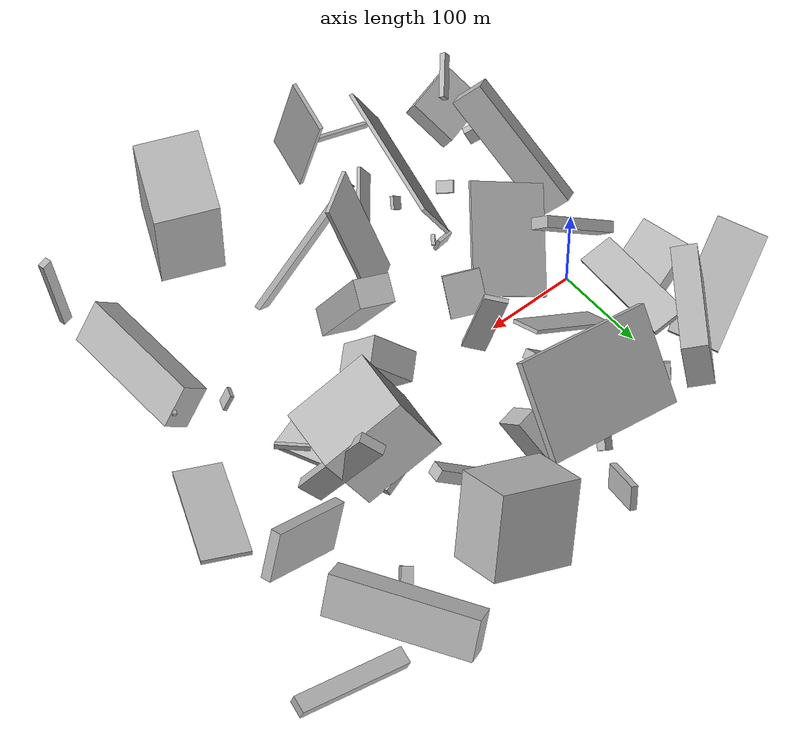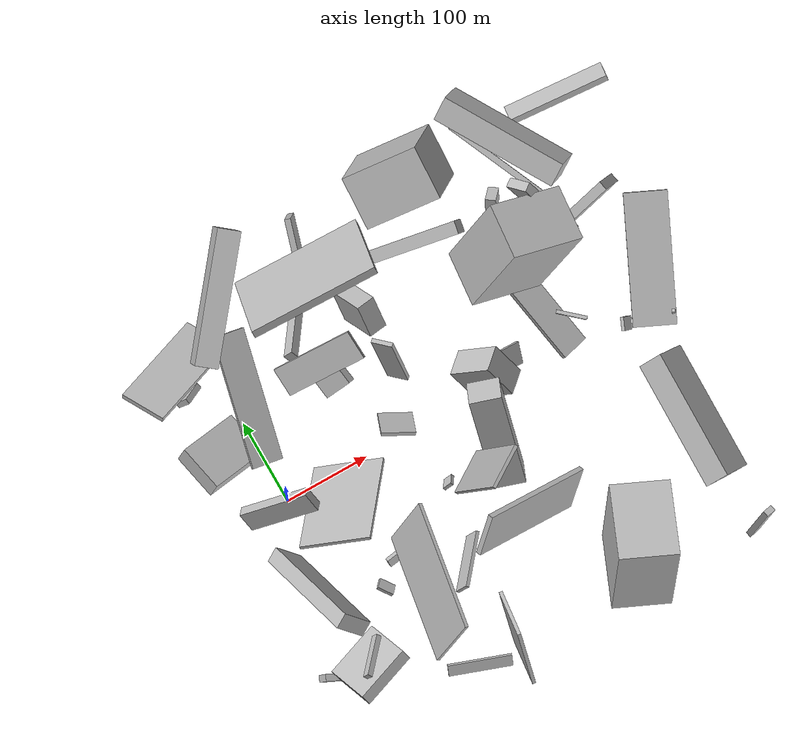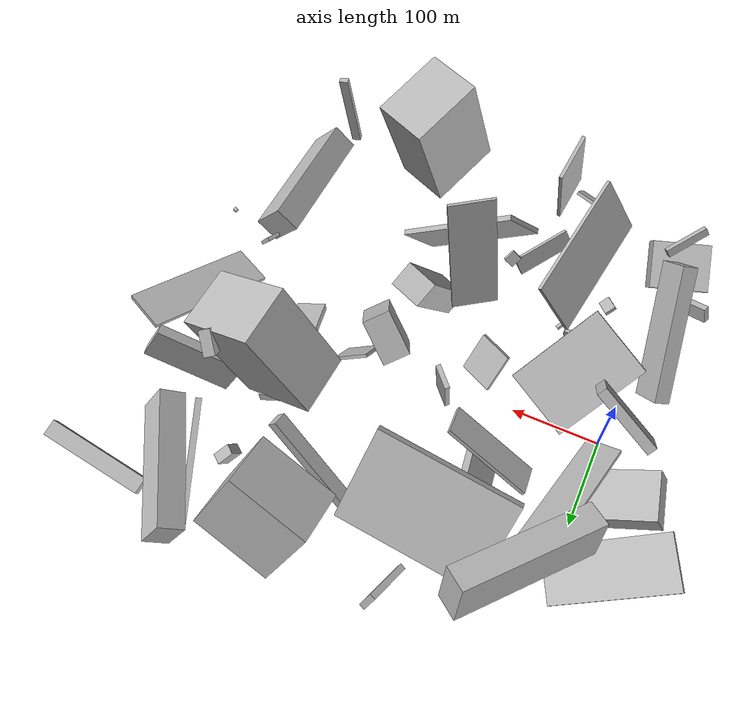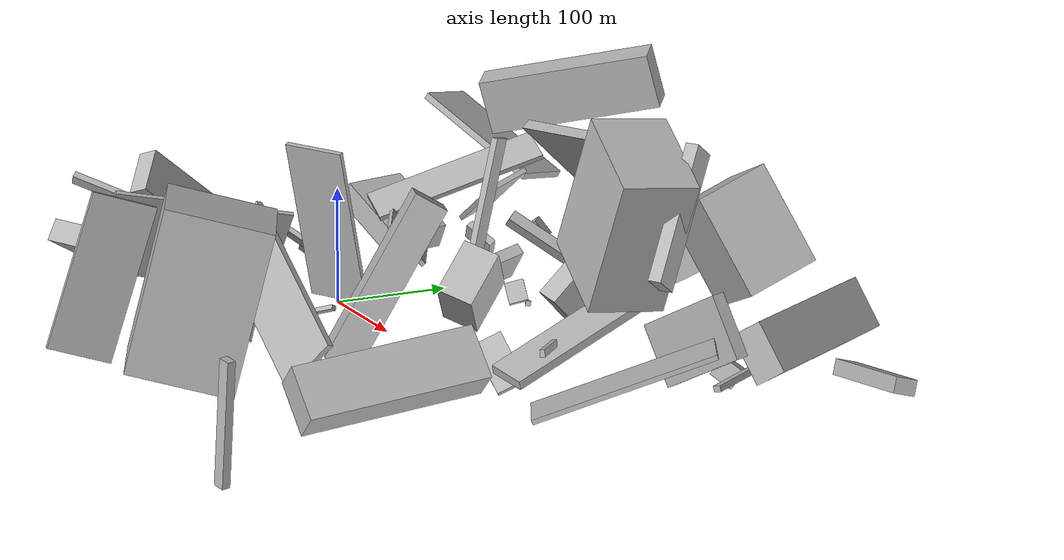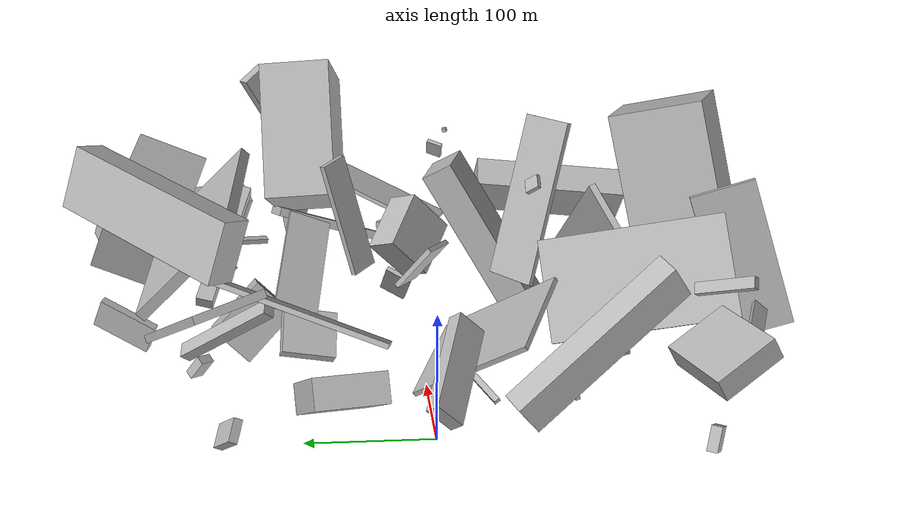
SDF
<sdf version="1.6">
 <world name="default">
  <scene>
   <sky><clouds><speed>12</speed></clouds></sky>
   <ambient>0.4 0.4 0.4 1</ambient>
   <background>0.7 0.7 0.7 1</background>
   <shadows>1</shadows>
  </scene>
  <gravity>0 0 -9.8066</gravity>
  <magnetic_field>6e-06 2.3e-05 -4.2e-05</magnetic_field>
  <physics default="0" name="default_physics" type="ode">
   <ode>
    <solver>
     <type>quick</type>
     <iters>10</iters>
     <sor>1.0</sor>
     <use_dynamic_moi_rescaling>0</use_dynamic_moi_rescaling>
    </solver>
    <constraints>
     <cfm>0</cfm>
     <erp>0.2</erp>
     <contact_max_correcting_vel>100</contact_max_correcting_vel>
     <contact_surface_layer>0.001</contact_surface_layer>
    </constraints>
   </ode>
   <max_step_size>0.004</max_step_size>
   <real_time_factor>1</real_time_factor>
   <real_time_update_rate>250</real_time_update_rate>
  </physics>
  <light name="sun" type="directional">
   <pose>0 0 10 0 0 0</pose>
   <diffuse>0.8 0.8 0.8 1</diffuse>
   <specular>0.2 0.2 0.2 1</specular>
   <attenuation>
    <range>1000</range>
    <constant>0.9</constant>
    <linear>0.01</linear>
    <quadratic>0.001</quadratic>
   </attenuation>
   <direction>-0.5 0.1 -0.9</direction>
  </light>
  <model name="building_1">
   <static>0</static>
   <pose>194.34569883834808 -94.3272535946426 128.6545128097053 1.8798057164773807 0.033140726628829845 0.5731515851457761</pose>
   <link name="link">
    <gravity>0</gravity>
    <pose>0 0 2.0 0 0 0</pose>
    <collision name="collision"><geometry><box><size>52 141 4</size></box></geometry></collision>
    <visual name="visual">
     <cast_shadows>0</cast_shadows>
     <geometry><box><size>52 141 4</size></box></geometry>
     <material>
      <script>
       <uri>model://HANNAS_wall/materials/scripts</uri>
       <uri>model://HANNAS_wall/materials/textures</uri>
       <name>vrc/HANNAS_wall</name>
      </script>
     </material>
    </visual>
   </link>
  </model>
  <model name="building_2">
   <static>0</static>
   <pose>64.1994674962472 -171.15647301067182 57.15995326398434 0.21515079012223287 -0.4532416574619626 2.871751072621569</pose>
   <link name="link">
    <gravity>0</gravity>
    <pose>0 0 42.0 0 0 0</pose>
    <collision name="collision"><geometry><box><size>4 150 84</size></box></geometry></collision>
    <visual name="visual">
     <cast_shadows>0</cast_shadows>
     <geometry><box><size>4 150 84</size></box></geometry>
     <material>
      <script>
       <uri>model://HANNAS_wall/materials/scripts</uri>
       <uri>model://HANNAS_wall/materials/textures</uri>
       <name>vrc/HANNAS_wall</name>
      </script>
     </material>
    </visual>
   </link>
  </model>
  <model name="building_3">
   <static>0</static>
   <pose>431.97326270727945 117.67972811752952 68.11363143289634 1.6911750621507078 -0.47173236183786715 0.16348133318099248</pose>
   <link name="link">
    <gravity>0</gravity>
    <pose>0 0 5.5 0 0 0</pose>
    <collision name="collision"><geometry><box><size>98 53 11</size></box></geometry></collision>
    <visual name="visual">
     <cast_shadows>0</cast_shadows>
     <geometry><box><size>98 53 11</size></box></geometry>
     <material>
      <script>
       <uri>model://HANNAS_wall/materials/scripts</uri>
       <uri>model://HANNAS_wall/materials/textures</uri>
       <name>vrc/HANNAS_wall</name>
      </script>
     </material>
    </visual>
   </link>
  </model>
  <model name="building_4">
   <static>0</static>
   <pose>106.33887461017079 160.3275684146659 54.91802894833538 -2.3797648201390573 0.5700018664867758 0.9738479457076715</pose>
   <link name="link">
    <gravity>0</gravity>
    <pose>0 0 6.0 0 0 0</pose>
    <collision name="collision"><geometry><box><size>102 10 12</size></box></geometry></collision>
    <visual name="visual">
     <cast_shadows>0</cast_shadows>
     <geometry><box><size>102 10 12</size></box></geometry>
     <material>
      <script>
       <uri>model://HANNAS_wall/materials/scripts</uri>
       <uri>model://HANNAS_wall/materials/textures</uri>
       <name>vrc/HANNAS_wall</name>
      </script>
     </material>
    </visual>
   </link>
  </model>
  <model name="building_5">
   <static>0</static>
   <pose>29.86513466439356 102.71705133317457 96.12974030426837 0.7591038394051389 -1.1027168636640485 -0.9246094998627664</pose>
   <link name="link">
    <gravity>0</gravity>
    <pose>0 0 18.5 0 0 0</pose>
    <collision name="collision"><geometry><box><size>4 150 37</size></box></geometry></collision>
    <visual name="visual">
     <cast_shadows>0</cast_shadows>
     <geometry><box><size>4 150 37</size></box></geometry>
     <material>
      <script>
       <uri>model://HANNAS_wall/materials/scripts</uri>
       <uri>model://HANNAS_wall/materials/textures</uri>
       <name>vrc/HANNAS_wall</name>
      </script>
     </material>
    </visual>
   </link>
  </model>
  <model name="building_6">
   <static>0</static>
   <pose>446.55809334009945 -36.367139742655866 31.298322075071482 0.0740865486901227 -1.2186775717350036 -2.0867194171382946</pose>
   <link name="link">
    <gravity>0</gravity>
    <pose>0 0 75.0 0 0 0</pose>
    <collision name="collision"><geometry><box><size>4 49 150</size></box></geometry></collision>
    <visual name="visual">
     <cast_shadows>0</cast_shadows>
     <geometry><box><size>4 49 150</size></box></geometry>
     <material>
      <script>
       <uri>model://HANNAS_wall/materials/scripts</uri>
       <uri>model://HANNAS_wall/materials/textures</uri>
       <name>vrc/HANNAS_wall</name>
      </script>
     </material>
    </visual>
   </link>
  </model>
  <model name="building_7">
   <static>0</static>
   <pose>276.8175680244014 208.5690999659703 86.8685478883111 1.1526596224438337 0.36506908083489714 2.9601582182610864</pose>
   <link name="link">
    <gravity>0</gravity>
    <pose>0 0 31.5 0 0 0</pose>
    <collision name="collision"><geometry><box><size>90 89 63</size></box></geometry></collision>
    <visual name="visual">
     <cast_shadows>0</cast_shadows>
     <geometry><box><size>90 89 63</size></box></geometry>
     <material>
      <script>
       <uri>model://HANNAS_wall/materials/scripts</uri>
       <uri>model://HANNAS_wall/materials/textures</uri>
       <name>vrc/HANNAS_wall</name>
      </script>
     </material>
    </visual>
   </link>
  </model>
  <model name="building_8">
   <static>0</static>
   <pose>139.83953668698356 -241.39430710045013 80.32408921557436 1.2511759170664396 -0.02047808448842035 -0.12989895570254026</pose>
   <link name="link">
    <gravity>0</gravity>
    <pose>0 0 27.5 0 0 0</pose>
    <collision name="collision"><geometry><box><size>4 132 55</size></box></geometry></collision>
    <visual name="visual">
     <cast_shadows>0</cast_shadows>
     <geometry><box><size>4 132 55</size></box></geometry>
     <material>
      <script>
       <uri>model://HANNAS_wall/materials/scripts</uri>
       <uri>model://HANNAS_wall/materials/textures</uri>
       <name>vrc/HANNAS_wall</name>
      </script>
     </material>
    </visual>
   </link>
  </model>
  <model name="building_9">
   <static>0</static>
   <pose>234.2562572595072 -49.59431417796519 77.79078242928526 1.0462870002364268 -0.11741194654023489 -0.3417019756081726</pose>
   <link name="link">
    <gravity>0</gravity>
    <pose>0 0 14.5 0 0 0</pose>
    <collision name="collision"><geometry><box><size>36 150 29</size></box></geometry></collision>
    <visual name="visual">
     <cast_shadows>0</cast_shadows>
     <geometry><box><size>36 150 29</size></box></geometry>
     <material>
      <script>
       <uri>model://HANNAS_wall/materials/scripts</uri>
       <uri>model://HANNAS_wall/materials/textures</uri>
       <name>vrc/HANNAS_wall</name>
      </script>
     </material>
    </visual>
   </link>
  </model>
  <model name="building_10">
   <static>0</static>
   <pose>173.02734470559773 157.93184386346732 46.557219266336894 2.903983987114152 -0.765549894817481 -1.2581992379983913</pose>
   <link name="link">
    <gravity>0</gravity>
    <pose>0 0 20.5 0 0 0</pose>
    <collision name="collision"><geometry><box><size>55 22 41</size></box></geometry></collision>
    <visual name="visual">
     <cast_shadows>0</cast_shadows>
     <geometry><box><size>55 22 41</size></box></geometry>
     <material>
      <script>
       <uri>model://HANNAS_wall/materials/scripts</uri>
       <uri>model://HANNAS_wall/materials/textures</uri>
       <name>vrc/HANNAS_wall</name>
      </script>
     </material>
    </visual>
   </link>
  </model>
  <model name="building_11">
   <static>0</static>
   <pose>366.25045360069385 184.3543669880596 21.49112685439611 2.996251662244055 0.5875487191818847 0.8395717041487313</pose>
   <link name="link">
    <gravity>0</gravity>
    <pose>0 0 9.0 0 0 0</pose>
    <collision name="collision"><geometry><box><size>21 12 18</size></box></geometry></collision>
    <visual name="visual">
     <cast_shadows>0</cast_shadows>
     <geometry><box><size>21 12 18</size></box></geometry>
     <material>
      <script>
       <uri>model://HANNAS_wall/materials/scripts</uri>
       <uri>model://HANNAS_wall/materials/textures</uri>
       <name>vrc/HANNAS_wall</name>
      </script>
     </material>
    </visual>
   </link>
  </model>
  <model name="building_12">
   <static>0</static>
   <pose>-28.180476413953965 158.92313505932813 21.383046073474635 0.7121616906973666 -0.8160995437555503 -0.33544976312815983</pose>
   <link name="link">
    <gravity>0</gravity>
    <pose>0 0 14.0 0 0 0</pose>
    <collision name="collision"><geometry><box><size>18 7 28</size></box></geometry></collision>
    <visual name="visual">
     <cast_shadows>0</cast_shadows>
     <geometry><box><size>18 7 28</size></box></geometry>
     <material>
      <script>
       <uri>model://HANNAS_wall/materials/scripts</uri>
       <uri>model://HANNAS_wall/materials/textures</uri>
       <name>vrc/HANNAS_wall</name>
      </script>
     </material>
    </visual>
   </link>
  </model>
  <model name="building_13">
   <static>0</static>
   <pose>317.60209823168793 96.19278712256317 91.8052791062629 -0.43123642136408846 -0.07946012174823576 -1.6787757816252264</pose>
   <link name="link">
    <gravity>0</gravity>
    <pose>0 0 62.5 0 0 0</pose>
    <collision name="collision"><geometry><box><size>64 88 125</size></box></geometry></collision>
    <visual name="visual">
     <cast_shadows>0</cast_shadows>
     <geometry><box><size>64 88 125</size></box></geometry>
     <material>
      <script>
       <uri>model://HANNAS_wall/materials/scripts</uri>
       <uri>model://HANNAS_wall/materials/textures</uri>
       <name>vrc/HANNAS_wall</name>
      </script>
     </material>
    </visual>
   </link>
  </model>
  <model name="building_14">
   <static>0</static>
   <pose>168.83010521107812 48.395004072273224 77.79462815658624 0.22068737953691986 -0.1360847505838712 -2.3881986770507813</pose>
   <link name="link">
    <gravity>0</gravity>
    <pose>0 0 49.5 0 0 0</pose>
    <collision name="collision"><geometry><box><size>5 24 99</size></box></geometry></collision>
    <visual name="visual">
     <cast_shadows>0</cast_shadows>
     <geometry><box><size>5 24 99</size></box></geometry>
     <material>
      <script>
       <uri>model://HANNAS_wall/materials/scripts</uri>
       <uri>model://HANNAS_wall/materials/textures</uri>
       <name>vrc/HANNAS_wall</name>
      </script>
     </material>
    </visual>
   </link>
  </model>
  <model name="building_15">
   <static>0</static>
   <pose>-35.97768782881814 45.42304617321125 58.65585751092235 -1.5566375866402506 0.4584782844903894 0.20858048504120183</pose>
   <link name="link">
    <gravity>0</gravity>
    <pose>0 0 27.0 0 0 0</pose>
    <collision name="collision"><geometry><box><size>74 23 54</size></box></geometry></collision>
    <visual name="visual">
     <cast_shadows>0</cast_shadows>
     <geometry><box><size>74 23 54</size></box></geometry>
     <material>
      <script>
       <uri>model://HANNAS_wall/materials/scripts</uri>
       <uri>model://HANNAS_wall/materials/textures</uri>
       <name>vrc/HANNAS_wall</name>
      </script>
     </material>
    </visual>
   </link>
  </model>
  <model name="building_16">
   <static>0</static>
   <pose>260.2827115573242 -11.242306352970036 61.60704238078348 0.7396720947365868 -0.30606900636417633 -2.4041930802911398</pose>
   <link name="link">
    <gravity>0</gravity>
    <pose>0 0 24.0 0 0 0</pose>
    <collision name="collision"><geometry><box><size>31 53 48</size></box></geometry></collision>
    <visual name="visual">
     <cast_shadows>0</cast_shadows>
     <geometry><box><size>31 53 48</size></box></geometry>
     <material>
      <script>
       <uri>model://HANNAS_wall/materials/scripts</uri>
       <uri>model://HANNAS_wall/materials/textures</uri>
       <name>vrc/HANNAS_wall</name>
      </script>
     </material>
    </visual>
   </link>
  </model>
  <model name="building_17">
   <static>0</static>
   <pose>426.0288261187634 251.45802075750325 24.761742600206468 -1.0070341890435295 1.2747350896105523 -1.137720026124609</pose>
   <link name="link">
    <gravity>0</gravity>
    <pose>0 0 59.0 0 0 0</pose>
    <collision name="collision"><geometry><box><size>13 18 118</size></box></geometry></collision>
    <visual name="visual">
     <cast_shadows>0</cast_shadows>
     <geometry><box><size>13 18 118</size></box></geometry>
     <material>
      <script>
       <uri>model://HANNAS_wall/materials/scripts</uri>
       <uri>model://HANNAS_wall/materials/textures</uri>
       <name>vrc/HANNAS_wall</name>
      </script>
     </material>
    </visual>
   </link>
  </model>
  <model name="building_18">
   <static>0</static>
   <pose>-14.075580883370776 -124.32435900433495 70.61478193683939 -0.7380574521843023 -0.3369555107241741 0.5052219483863529</pose>
   <link name="link">
    <gravity>0</gravity>
    <pose>0 0 19.0 0 0 0</pose>
    <collision name="collision"><geometry><box><size>18 150 38</size></box></geometry></collision>
    <visual name="visual">
     <cast_shadows>0</cast_shadows>
     <geometry><box><size>18 150 38</size></box></geometry>
     <material>
      <script>
       <uri>model://HANNAS_wall/materials/scripts</uri>
       <uri>model://HANNAS_wall/materials/textures</uri>
       <name>vrc/HANNAS_wall</name>
      </script>
     </material>
    </visual>
   </link>
  </model>
  <model name="building_19">
   <static>0</static>
   <pose>-13.702281990451624 148.93902465652536 156.51330321057958 0.7134513879689449 1.282778581904002 1.6129387332553349</pose>
   <link name="link">
    <gravity>0</gravity>
    <pose>0 0 75.0 0 0 0</pose>
    <collision name="collision"><geometry><box><size>48 26 150</size></box></geometry></collision>
    <visual name="visual">
     <cast_shadows>0</cast_shadows>
     <geometry><box><size>48 26 150</size></box></geometry>
     <material>
      <script>
       <uri>model://HANNAS_wall/materials/scripts</uri>
       <uri>model://HANNAS_wall/materials/textures</uri>
       <name>vrc/HANNAS_wall</name>
      </script>
     </material>
    </visual>
   </link>
  </model>
  <model name="building_20">
   <static>0</static>
   <pose>-8.738951806545868 -210.79781926318287 125.27576804772333 -2.7782018544278215 -0.519182130984666 2.2328034368541987</pose>
   <link name="link">
    <gravity>0</gravity>
    <pose>0 0 4.5 0 0 0</pose>
    <collision name="collision"><geometry><box><size>6 49 9</size></box></geometry></collision>
    <visual name="visual">
     <cast_shadows>0</cast_shadows>
     <geometry><box><size>6 49 9</size></box></geometry>
     <material>
      <script>
       <uri>model://HANNAS_wall/materials/scripts</uri>
       <uri>model://HANNAS_wall/materials/textures</uri>
       <name>vrc/HANNAS_wall</name>
      </script>
     </material>
    </visual>
   </link>
  </model>
  <model name="building_21">
   <static>0</static>
   <pose>371.2137238643017 17.53879739667163 56.5069105445302 1.6858824882822354 -0.0433855322228347 -0.7427722972742486</pose>
   <link name="link">
    <gravity>0</gravity>
    <pose>0 0 2.0 0 0 0</pose>
    <collision name="collision"><geometry><box><size>35 6 4</size></box></geometry></collision>
    <visual name="visual">
     <cast_shadows>0</cast_shadows>
     <geometry><box><size>35 6 4</size></box></geometry>
     <material>
      <script>
       <uri>model://HANNAS_wall/materials/scripts</uri>
       <uri>model://HANNAS_wall/materials/textures</uri>
       <name>vrc/HANNAS_wall</name>
      </script>
     </material>
    </visual>
   </link>
  </model>
  <model name="building_22">
   <static>0</static>
   <pose>263.4605571657455 170.74989167742257 66.07317043885162 0.25086183618375274 -0.6445326227027922 -0.329901217845889</pose>
   <link name="link">
    <gravity>0</gravity>
    <pose>0 0 6.5 0 0 0</pose>
    <collision name="collision"><geometry><box><size>125 15 13</size></box></geometry></collision>
    <visual name="visual">
     <cast_shadows>0</cast_shadows>
     <geometry><box><size>125 15 13</size></box></geometry>
     <material>
      <script>
       <uri>model://HANNAS_wall/materials/scripts</uri>
       <uri>model://HANNAS_wall/materials/textures</uri>
       <name>vrc/HANNAS_wall</name>
      </script>
     </material>
    </visual>
   </link>
  </model>
  <model name="building_23">
   <static>0</static>
   <pose>127.03211579607088 -165.14948964500468 63.74974430467694 -0.46909641202149177 -0.2776858641268088 -2.269112884743504</pose>
   <link name="link">
    <gravity>0</gravity>
    <pose>0 0 11.0 0 0 0</pose>
    <collision name="collision"><geometry><box><size>67 4 22</size></box></geometry></collision>
    <visual name="visual">
     <cast_shadows>0</cast_shadows>
     <geometry><box><size>67 4 22</size></box></geometry>
     <material>
      <script>
       <uri>model://HANNAS_wall/materials/scripts</uri>
       <uri>model://HANNAS_wall/materials/textures</uri>
       <name>vrc/HANNAS_wall</name>
      </script>
     </material>
    </visual>
   </link>
  </model>
  <model name="building_24">
   <static>0</static>
   <pose>415.35754072380325 -148.01300640847728 58.125529480105264 0.15216463442603126 0.8667632769756182 0.10279361821028138</pose>
   <link name="link">
    <gravity>0</gravity>
    <pose>0 0 15.5 0 0 0</pose>
    <collision name="collision"><geometry><box><size>45 150 31</size></box></geometry></collision>
    <visual name="visual">
     <cast_shadows>0</cast_shadows>
     <geometry><box><size>45 150 31</size></box></geometry>
     <material>
      <script>
       <uri>model://HANNAS_wall/materials/scripts</uri>
       <uri>model://HANNAS_wall/materials/textures</uri>
       <name>vrc/HANNAS_wall</name>
      </script>
     </material>
    </visual>
   </link>
  </model>
  <model name="building_25">
   <static>0</static>
   <pose>433.9195806794828 -288.5405099268822 53.83833735197348 -1.3754978277261989 -1.4312347431958765 -0.0034672019008437</pose>
   <link name="link">
    <gravity>0</gravity>
    <pose>0 0 3.5 0 0 0</pose>
    <collision name="collision"><geometry><box><size>104 11 7</size></box></geometry></collision>
    <visual name="visual">
     <cast_shadows>0</cast_shadows>
     <geometry><box><size>104 11 7</size></box></geometry>
     <material>
      <script>
       <uri>model://HANNAS_wall/materials/scripts</uri>
       <uri>model://HANNAS_wall/materials/textures</uri>
       <name>vrc/HANNAS_wall</name>
      </script>
     </material>
    </visual>
   </link>
  </model>
  <model name="building_26">
   <static>0</static>
   <pose>-21.681001031461243 -189.64907854303001 57.76444746643102 1.040175519254233 -0.03557128370802034 0.32966416791510117</pose>
   <link name="link">
    <gravity>0</gravity>
    <pose>0 0 26.5 0 0 0</pose>
    <collision name="collision"><geometry><box><size>66 19 53</size></box></geometry></collision>
    <visual name="visual">
     <cast_shadows>0</cast_shadows>
     <geometry><box><size>66 19 53</size></box></geometry>
     <material>
      <script>
       <uri>model://HANNAS_wall/materials/scripts</uri>
       <uri>model://HANNAS_wall/materials/textures</uri>
       <name>vrc/HANNAS_wall</name>
      </script>
     </material>
    </visual>
   </link>
  </model>
  <model name="building_27">
   <static>0</static>
   <pose>217.80197701666083 -149.97355220435279 80.74285923927539 1.0796270610149499 -0.8343644834088807 0.6925966423274575</pose>
   <link name="link">
    <gravity>0</gravity>
    <pose>0 0 3.0 0 0 0</pose>
    <collision name="collision"><geometry><box><size>55 150 6</size></box></geometry></collision>
    <visual name="visual">
     <cast_shadows>0</cast_shadows>
     <geometry><box><size>55 150 6</size></box></geometry>
     <material>
      <script>
       <uri>model://HANNAS_wall/materials/scripts</uri>
       <uri>model://HANNAS_wall/materials/textures</uri>
       <name>vrc/HANNAS_wall</name>
      </script>
     </material>
    </visual>
   </link>
  </model>
  <model name="building_28">
   <static>0</static>
   <pose>46.79908538613273 -39.724801164483814 64.32887938568557 -2.730446869858345 -0.559261271611032 -2.2338292395940162</pose>
   <link name="link">
    <gravity>0</gravity>
    <pose>0 0 2.0 0 0 0</pose>
    <collision name="collision"><geometry><box><size>116 82 4</size></box></geometry></collision>
    <visual name="visual">
     <cast_shadows>0</cast_shadows>
     <geometry><box><size>116 82 4</size></box></geometry>
     <material>
      <script>
       <uri>model://HANNAS_wall/materials/scripts</uri>
       <uri>model://HANNAS_wall/materials/textures</uri>
       <name>vrc/HANNAS_wall</name>
      </script>
     </material>
    </visual>
   </link>
  </model>
  <model name="building_29">
   <static>0</static>
   <pose>411.8201038017223 -24.64652165886062 120.04305564454232 -2.0300341829921527 -0.9616310663592895 3.1207737817447714</pose>
   <link name="link">
    <gravity>0</gravity>
    <pose>0 0 7.5 0 0 0</pose>
    <collision name="collision"><geometry><box><size>17 4 15</size></box></geometry></collision>
    <visual name="visual">
     <cast_shadows>0</cast_shadows>
     <geometry><box><size>17 4 15</size></box></geometry>
     <material>
      <script>
       <uri>model://HANNAS_wall/materials/scripts</uri>
       <uri>model://HANNAS_wall/materials/textures</uri>
       <name>vrc/HANNAS_wall</name>
      </script>
     </material>
    </visual>
   </link>
  </model>
  <model name="building_30">
   <static>0</static>
   <pose>317.0052546827023 -209.93491924850062 106.64678226054164 0.19748348996123838 -1.3168116288152634 0.9530400146966664</pose>
   <link name="link">
    <gravity>0</gravity>
    <pose>0 0 43.5 0 0 0</pose>
    <collision name="collision"><geometry><box><size>137 66 87</size></box></geometry></collision>
    <visual name="visual">
     <cast_shadows>0</cast_shadows>
     <geometry><box><size>137 66 87</size></box></geometry>
     <material>
      <script>
       <uri>model://HANNAS_wall/materials/scripts</uri>
       <uri>model://HANNAS_wall/materials/textures</uri>
       <name>vrc/HANNAS_wall</name>
      </script>
     </material>
    </visual>
   </link>
  </model>
  <model name="building_31">
   <static>0</static>
   <pose>93.13283725289844 96.08280954399308 30.77657026786705 0.7584195030519782 -0.20902536036042718 1.7139311720393944</pose>
   <link name="link">
    <gravity>0</gravity>
    <pose>0 0 19.5 0 0 0</pose>
    <collision name="collision"><geometry><box><size>44 10 39</size></box></geometry></collision>
    <visual name="visual">
     <cast_shadows>0</cast_shadows>
     <geometry><box><size>44 10 39</size></box></geometry>
     <material>
      <script>
       <uri>model://HANNAS_wall/materials/scripts</uri>
       <uri>model://HANNAS_wall/materials/textures</uri>
       <name>vrc/HANNAS_wall</name>
      </script>
     </material>
    </visual>
   </link>
  </model>
  <model name="building_32">
   <static>0</static>
   <pose>35.77877542463009 172.56581451604765 50.87603680296866 -1.4110545947394106 -0.6594210651439991 0.7298496367765156</pose>
   <link name="link">
    <gravity>0</gravity>
    <pose>0 0 6.0 0 0 0</pose>
    <collision name="collision"><geometry><box><size>7 18 12</size></box></geometry></collision>
    <visual name="visual">
     <cast_shadows>0</cast_shadows>
     <geometry><box><size>7 18 12</size></box></geometry>
     <material>
      <script>
       <uri>model://HANNAS_wall/materials/scripts</uri>
       <uri>model://HANNAS_wall/materials/textures</uri>
       <name>vrc/HANNAS_wall</name>
      </script>
     </material>
    </visual>
   </link>
  </model>
  <model name="building_33">
   <static>0</static>
   <pose>407.68980029727237 94.32019500048926 106.71114038918422 -0.5589141988277885 0.024255822709163367 0.6331243555174342</pose>
   <link name="link">
    <gravity>0</gravity>
    <pose>0 0 57.5 0 0 0</pose>
    <collision name="collision"><geometry><box><size>11 26 115</size></box></geometry></collision>
    <visual name="visual">
     <cast_shadows>0</cast_shadows>
     <geometry><box><size>11 26 115</size></box></geometry>
     <material>
      <script>
       <uri>model://HANNAS_wall/materials/scripts</uri>
       <uri>model://HANNAS_wall/materials/textures</uri>
       <name>vrc/HANNAS_wall</name>
      </script>
     </material>
    </visual>
   </link>
  </model>
  <model name="building_34">
   <static>0</static>
   <pose>39.49046488163687 -147.43935700365626 51.609940208282104 2.1151119296657526 -0.3402128373395419 2.2213837739841673</pose>
   <link name="link">
    <gravity>0</gravity>
    <pose>0 0 6.5 0 0 0</pose>
    <collision name="collision"><geometry><box><size>19 4 13</size></box></geometry></collision>
    <visual name="visual">
     <cast_shadows>0</cast_shadows>
     <geometry><box><size>19 4 13</size></box></geometry>
     <material>
      <script>
       <uri>model://HANNAS_wall/materials/scripts</uri>
       <uri>model://HANNAS_wall/materials/textures</uri>
       <name>vrc/HANNAS_wall</name>
      </script>
     </material>
    </visual>
   </link>
  </model>
  <model name="building_35">
   <static>0</static>
   <pose>138.7064836721921 219.42751947850667 90.5430010028359 0.21264548264115551 0.7592558273183929 -1.4794992851446098</pose>
   <link name="link">
    <gravity>0</gravity>
    <pose>0 0 51.0 0 0 0</pose>
    <collision name="collision"><geometry><box><size>9 150 102</size></box></geometry></collision>
    <visual name="visual">
     <cast_shadows>0</cast_shadows>
     <geometry><box><size>9 150 102</size></box></geometry>
     <material>
      <script>
       <uri>model://HANNAS_wall/materials/scripts</uri>
       <uri>model://HANNAS_wall/materials/textures</uri>
       <name>vrc/HANNAS_wall</name>
      </script>
     </material>
    </visual>
   </link>
  </model>
  <model name="building_36">
   <static>0</static>
   <pose>392.8140733530421 205.27167143973438 27.124201126487485 0.22422705757621092 0.11004508010795598 -1.146651306119468</pose>
   <link name="link">
    <gravity>0</gravity>
    <pose>0 0 2.5 0 0 0</pose>
    <collision name="collision"><geometry><box><size>147 7 5</size></box></geometry></collision>
    <visual name="visual">
     <cast_shadows>0</cast_shadows>
     <geometry><box><size>147 7 5</size></box></geometry>
     <material>
      <script>
       <uri>model://HANNAS_wall/materials/scripts</uri>
       <uri>model://HANNAS_wall/materials/textures</uri>
       <name>vrc/HANNAS_wall</name>
      </script>
     </material>
    </visual>
   </link>
  </model>
  <model name="building_37">
   <static>0</static>
   <pose>156.39543618784828 -7.795379924653087 89.4484173033341 1.444619901316483 0.6873473892285692 -2.1303808237680224</pose>
   <link name="link">
    <gravity>0</gravity>
    <pose>0 0 19.0 0 0 0</pose>
    <collision name="collision"><geometry><box><size>4 44 38</size></box></geometry></collision>
    <visual name="visual">
     <cast_shadows>0</cast_shadows>
     <geometry><box><size>4 44 38</size></box></geometry>
     <material>
      <script>
       <uri>model://HANNAS_wall/materials/scripts</uri>
       <uri>model://HANNAS_wall/materials/textures</uri>
       <name>vrc/HANNAS_wall</name>
      </script>
     </material>
    </visual>
   </link>
  </model>
  <model name="building_38">
   <static>0</static>
   <pose>356.17655071955505 -14.108803462782248 32.628685976819156 1.2285820417907392 -0.1991707750594516 -2.8674245382008583</pose>
   <link name="link">
    <gravity>0</gravity>
    <pose>0 0 75.0 0 0 0</pose>
    <collision name="collision"><geometry><box><size>33 8 150</size></box></geometry></collision>
    <visual name="visual">
     <cast_shadows>0</cast_shadows>
     <geometry><box><size>33 8 150</size></box></geometry>
     <material>
      <script>
       <uri>model://HANNAS_wall/materials/scripts</uri>
       <uri>model://HANNAS_wall/materials/textures</uri>
       <name>vrc/HANNAS_wall</name>
      </script>
     </material>
    </visual>
   </link>
  </model>
  <model name="building_39">
   <static>0</static>
   <pose>395.38891759293165 222.08485124630297 71.9378108941976 2.5760515320106157 -0.009889494932086759 2.092726636422071</pose>
   <link name="link">
    <gravity>0</gravity>
    <pose>0 0 22.0 0 0 0</pose>
    <collision name="collision"><geometry><box><size>150 29 44</size></box></geometry></collision>
    <visual name="visual">
     <cast_shadows>0</cast_shadows>
     <geometry><box><size>150 29 44</size></box></geometry>
     <material>
      <script>
       <uri>model://HANNAS_wall/materials/scripts</uri>
       <uri>model://HANNAS_wall/materials/textures</uri>
       <name>vrc/HANNAS_wall</name>
      </script>
     </material>
    </visual>
   </link>
  </model>
  <model name="building_40">
   <static>0</static>
   <pose>150.5274367045641 -90.03063091473032 155.15402690048793 2.2661148692612216 0.5890623755398562 0.9732917762857701</pose>
   <link name="link">
    <gravity>0</gravity>
    <pose>0 0 2.0 0 0 0</pose>
    <collision name="collision"><geometry><box><size>13 12 4</size></box></geometry></collision>
    <visual name="visual">
     <cast_shadows>0</cast_shadows>
     <geometry><box><size>13 12 4</size></box></geometry>
     <material>
      <script>
       <uri>model://HANNAS_wall/materials/scripts</uri>
       <uri>model://HANNAS_wall/materials/textures</uri>
       <name>vrc/HANNAS_wall</name>
      </script>
     </material>
    </visual>
   </link>
  </model>
  <model name="building_41">
   <static>0</static>
   <pose>9.01443292257325 188.69031565762003 92.89688137992877 1.116346694424779 -0.16683647200584467 -1.079802132311574</pose>
   <link name="link">
    <gravity>0</gravity>
    <pose>0 0 62.0 0 0 0</pose>
    <collision name="collision"><geometry><box><size>53 6 124</size></box></geometry></collision>
    <visual name="visual">
     <cast_shadows>0</cast_shadows>
     <geometry><box><size>53 6 124</size></box></geometry>
     <material>
      <script>
       <uri>model://HANNAS_wall/materials/scripts</uri>
       <uri>model://HANNAS_wall/materials/textures</uri>
       <name>vrc/HANNAS_wall</name>
      </script>
     </material>
    </visual>
   </link>
  </model>
  <model name="building_42">
   <static>0</static>
   <pose>55.27763388849239 104.50213001906596 83.4561358950271 0.6371088592213004 0.930335923846824 0.6074578709235338</pose>
   <link name="link">
    <gravity>0</gravity>
    <pose>0 0 50.0 0 0 0</pose>
    <collision name="collision"><geometry><box><size>4 34 100</size></box></geometry></collision>
    <visual name="visual">
     <cast_shadows>0</cast_shadows>
     <geometry><box><size>4 34 100</size></box></geometry>
     <material>
      <script>
       <uri>model://HANNAS_wall/materials/scripts</uri>
       <uri>model://HANNAS_wall/materials/textures</uri>
       <name>vrc/HANNAS_wall</name>
      </script>
     </material>
    </visual>
   </link>
  </model>
  <model name="building_43">
   <static>0</static>
   <pose>153.41918217257194 251.21399736957972 28.671320073602672 0.44053638420271385 -0.19648803529572673 -0.3778148089899644</pose>
   <link name="link">
    <gravity>0</gravity>
    <pose>0 0 13.0 0 0 0</pose>
    <collision name="collision"><geometry><box><size>7 50 26</size></box></geometry></collision>
    <visual name="visual">
     <cast_shadows>0</cast_shadows>
     <geometry><box><size>7 50 26</size></box></geometry>
     <material>
      <script>
       <uri>model://HANNAS_wall/materials/scripts</uri>
       <uri>model://HANNAS_wall/materials/textures</uri>
       <name>vrc/HANNAS_wall</name>
      </script>
     </material>
    </visual>
   </link>
  </model>
  <model name="building_44">
   <static>0</static>
   <pose>-48.78331778182309 -200.71637775322117 28.408144943112546 -2.7394569969291367 -0.08853718870683612 1.1443925575614395</pose>
   <link name="link">
    <gravity>0</gravity>
    <pose>0 0 9.5 0 0 0</pose>
    <collision name="collision"><geometry><box><size>8 32 19</size></box></geometry></collision>
    <visual name="visual">
     <cast_shadows>0</cast_shadows>
     <geometry><box><size>8 32 19</size></box></geometry>
     <material>
      <script>
       <uri>model://HANNAS_wall/materials/scripts</uri>
       <uri>model://HANNAS_wall/materials/textures</uri>
       <name>vrc/HANNAS_wall</name>
      </script>
     </material>
    </visual>
   </link>
  </model>
  <model name="building_45">
   <static>0</static>
   <pose>-18.61685247601213 -16.396364612054036 66.17803266496146 2.2397043354852473 0.5219152351741969 2.829073018718481</pose>
   <link name="link">
    <gravity>0</gravity>
    <pose>0 0 6.0 0 0 0</pose>
    <collision name="collision"><geometry><box><size>86 26 12</size></box></geometry></collision>
    <visual name="visual">
     <cast_shadows>0</cast_shadows>
     <geometry><box><size>86 26 12</size></box></geometry>
     <material>
      <script>
       <uri>model://HANNAS_wall/materials/scripts</uri>
       <uri>model://HANNAS_wall/materials/textures</uri>
       <name>vrc/HANNAS_wall</name>
      </script>
     </material>
    </visual>
   </link>
  </model>
  <model name="building_46">
   <static>0</static>
   <pose>83.36176799021732 -111.07863592776052 24.471327846076882 2.1275827770725226 -1.0778517535112795 0.3270304696689539</pose>
   <link name="link">
    <gravity>0</gravity>
    <pose>0 0 2.0 0 0 0</pose>
    <collision name="collision"><geometry><box><size>4 11 4</size></box></geometry></collision>
    <visual name="visual">
     <cast_shadows>0</cast_shadows>
     <geometry><box><size>4 11 4</size></box></geometry>
     <material>
      <script>
       <uri>model://HANNAS_wall/materials/scripts</uri>
       <uri>model://HANNAS_wall/materials/textures</uri>
       <name>vrc/HANNAS_wall</name>
      </script>
     </material>
    </visual>
   </link>
  </model>
  <model name="building_47">
   <static>0</static>
   <pose>55.83163574487175 -256.71427450122343 55.19496196145811 -1.6174355205811577 0.6377888672289128 -1.9434223061927407</pose>
   <link name="link">
    <gravity>0</gravity>
    <pose>0 0 35.5 0 0 0</pose>
    <collision name="collision"><geometry><box><size>13 4 71</size></box></geometry></collision>
    <visual name="visual">
     <cast_shadows>0</cast_shadows>
     <geometry><box><size>13 4 71</size></box></geometry>
     <material>
      <script>
       <uri>model://HANNAS_wall/materials/scripts</uri>
       <uri>model://HANNAS_wall/materials/textures</uri>
       <name>vrc/HANNAS_wall</name>
      </script>
     </material>
    </visual>
   </link>
  </model>
  <model name="building_48">
   <static>0</static>
   <pose>288.67257350773195 25.114778254170798 26.664449047706455 -2.154662445294331 -0.6765041622218918 -3.034622838372455</pose>
   <link name="link">
    <gravity>0</gravity>
    <pose>0 0 12.5 0 0 0</pose>
    <collision name="collision"><geometry><box><size>49 4 25</size></box></geometry></collision>
    <visual name="visual">
     <cast_shadows>0</cast_shadows>
     <geometry><box><size>49 4 25</size></box></geometry>
     <material>
      <script>
       <uri>model://HANNAS_wall/materials/scripts</uri>
       <uri>model://HANNAS_wall/materials/textures</uri>
       <name>vrc/HANNAS_wall</name>
      </script>
     </material>
    </visual>
   </link>
  </model>
  <model name="building_49">
   <static>0</static>
   <pose>72.5522826571879 -36.29753998443366 18.599959453108795 2.1255495072927273 0.922478344207117 -0.5877926565485954</pose>
   <link name="link">
    <gravity>0</gravity>
    <pose>0 0 16.0 0 0 0</pose>
    <collision name="collision"><geometry><box><size>4 5 32</size></box></geometry></collision>
    <visual name="visual">
     <cast_shadows>0</cast_shadows>
     <geometry><box><size>4 5 32</size></box></geometry>
     <material>
      <script>
       <uri>model://HANNAS_wall/materials/scripts</uri>
       <uri>model://HANNAS_wall/materials/textures</uri>
       <name>vrc/HANNAS_wall</name>
      </script>
     </material>
    </visual>
   </link>
  </model>
  <model name="building_50">
   <static>0</static>
   <pose>457.7686338858218 -45.482586391596826 123.98333206399319 -0.9014299617408834 1.3093231962654304 -1.3147309475291833</pose>
   <link name="link">
    <gravity>0</gravity>
    <pose>0 0 2.0 0 0 0</pose>
    <collision name="collision"><geometry><box><size>4 4 4</size></box></geometry></collision>
    <visual name="visual">
     <cast_shadows>0</cast_shadows>
     <geometry><box><size>4 4 4</size></box></geometry>
     <material>
      <script>
       <uri>model://HANNAS_wall/materials/scripts</uri>
       <uri>model://HANNAS_wall/materials/textures</uri>
       <name>vrc/HANNAS_wall</name>
      </script>
     </material>
    </visual>
   </link>
  </model>
  <model name="building_51">
   <static>0</static>
   <pose>79.01969951133026 -113.69278307014271 9.638957898274045 1.69927706397629 1.2732374053277224 -1.3089109030097033</pose>
   <link name="link">
    <gravity>0</gravity>
    <pose>0 0 9.0 0 0 0</pose>
    <collision name="collision"><geometry><box><size>18 4 18</size></box></geometry></collision>
    <visual name="visual">
     <cast_shadows>0</cast_shadows>
     <geometry><box><size>18 4 18</size></box></geometry>
     <material>
      <script>
       <uri>model://HANNAS_wall/materials/scripts</uri>
       <uri>model://HANNAS_wall/materials/textures</uri>
       <name>vrc/HANNAS_wall</name>
      </script>
     </material>
    </visual>
   </link>
  </model>
 </world>
</sdf>
